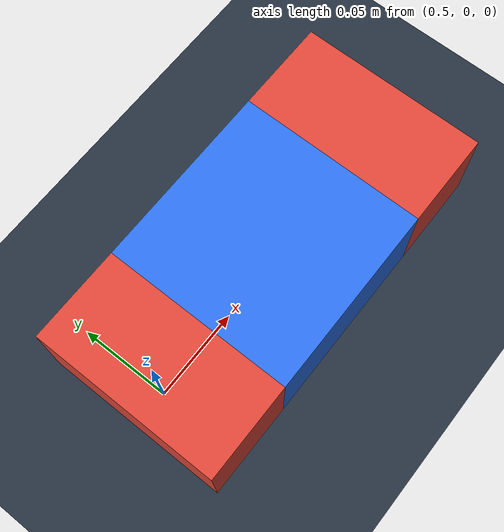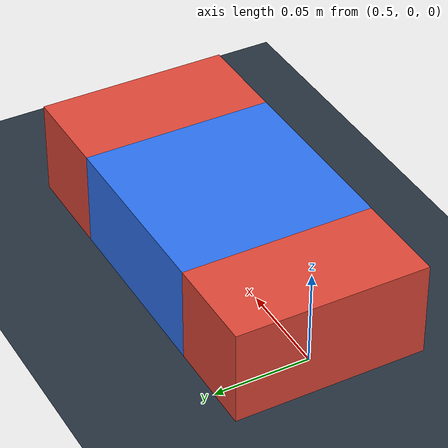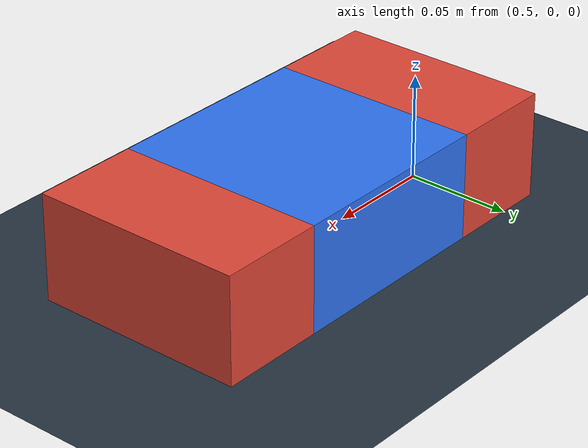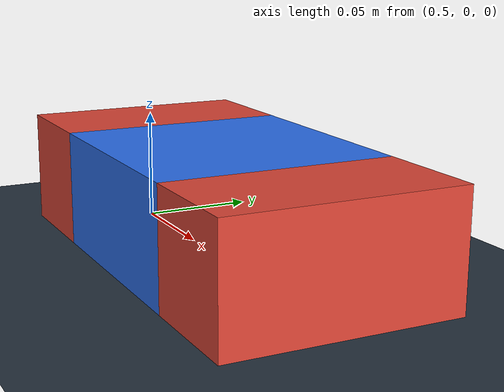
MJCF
<mujoco model="block_force_center_ends_scene">
  <statistic center="0.3 0.0 0.12" extent="1.0"/>

  <option timestep="0.002" iterations="20" ls_iterations="16" integrator="implicitfast">
    <flag eulerdamp="disable"/>
  </option>

  <visual>
    <headlight diffuse="0.6 0.6 0.6" ambient="0.3 0.3 0.3" specular="0 0 0"/>
    <rgba haze="0.15 0.25 0.35 1"/>
    <global azimuth="120" elevation="-20" offwidth="960" offheight="720"/>
  </visual>

  <asset>
    <texture type="skybox" builtin="gradient" rgb1="0.3 0.5 0.7" rgb2="0 0 0" width="512" height="3072"/>
    <texture type="2d" name="floor_checker" builtin="checker" mark="edge"
      rgb1="0.20 0.26 0.32" rgb2="0.10 0.14 0.18" markrgb="0.85 0.85 0.85"
      width="300" height="300"/>
    <material name="floor_checker_mat" texture="floor_checker" texuniform="true" texrepeat="6 6" reflectance="0"/>
  </asset>

  <worldbody>
    <light pos="0 0 1.5" dir="0 0 -1" directional="true"/>
    <geom name="floor" pos="0 0 0" size="0 0 0.05" type="plane" material="floor_checker_mat"
      friction="0.0 0.0 0.0" contype="1" conaffinity="1"/>

    <body name="push_block" pos="0.58 0.0 0.025">
      <freejoint/>
      <inertial pos="0 0 0" mass="1.0" diaginertia="0.004166666666666667 0.003541666666666667 0.001041666666666667"/>
      <geom name="push_block_left_end" type="box" pos="-0.075 0 0" size="0.025 0.05 0.025" condim="3"
        friction="0.20 0.0 0.0" rgba="0.88 0.28 0.22 1" contype="2" conaffinity="3" solref="0.01 1"/>
      <geom name="push_block_center" type="box" pos="0 0 0" size="0.05 0.05 0.025" condim="3"
        friction="0.50 0.0 0.0" rgba="0.18 0.45 0.95 1" contype="2" conaffinity="3" solref="0.01 1"/>
      <geom name="push_block_right_end" type="box" pos="0.075 0 0" size="0.025 0.05 0.025" condim="3"
        friction="0.20 0.0 0.0" rgba="0.88 0.28 0.22 1" contype="2" conaffinity="3" solref="0.01 1"/>
    </body>
  </worldbody>
</mujoco>
